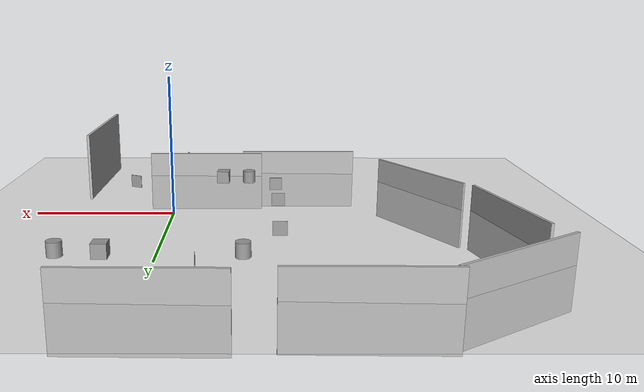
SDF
<sdf version="1.6">
 <world name="default">
  <model name="ground_plane">
   <static>1</static>
   <link name="link">
    <collision name="collision">
     <geometry><plane><normal>0 0 1</normal><size>100 100</size></plane></geometry>
     <surface><friction><ode><mu>100</mu><mu2>50</mu2></ode></friction></surface>
    </collision>
    <visual name="visual">
     <cast_shadows>0</cast_shadows>
     <geometry><plane><normal>0 0 1</normal><size>100 100</size></plane></geometry>
     <material>
      <script><uri>file://media/materials/scripts/gazebo.material</uri><name>Gazebo/Grey</name></script>
     </material>
    </visual>
   </link>
  </model>
  <model name="moon_wall">
   <static>1</static>
   <link name="link">
    <visual name="visual">
     <geometry><mesh><uri>model://moon_wall/meshes/moon_wall.dae</uri></mesh></geometry>
    </visual>
   </link>
   <pose>6.65003 -9.83883 0 0 -0 0</pose>
  </model>
  <model name="unit_cylinder">
   <pose>-5.38795 9.04573 0.499996 3e-06 3e-06 2.7e-05</pose>
   <link name="link">
    <inertial>
     <mass>1</mass>
     <inertia><ixx>0.145833</ixx><ixy>0</ixy><ixz>0</ixz><iyy>0.145833</iyy><iyz>0</iyz><izz>0.125</izz></inertia>
    </inertial>
    <collision name="collision">
     <geometry><cylinder><radius>0.5</radius><length>1</length></cylinder></geometry>
    </collision>
    <visual name="visual">
     <geometry><cylinder><radius>0.5</radius><length>1</length></cylinder></geometry>
     <material>
      <script><name>Gazebo/Grey</name><uri>file://media/materials/scripts/gazebo.material</uri></script>
     </material>
    </visual>
   </link>
  </model>
  <model name="unit_cylinder_0">
   <pose>6.21227 8.90939 0.499994 -3e-06 -2e-06 0</pose>
   <link name="link">
    <inertial>
     <mass>1</mass>
     <inertia><ixx>0.145833</ixx><ixy>0</ixy><ixz>0</ixz><iyy>0.145833</iyy><iyz>0</iyz><izz>0.125</izz></inertia>
    </inertial>
    <collision name="collision">
     <geometry><cylinder><radius>0.5</radius><length>1</length></cylinder></geometry>
    </collision>
    <visual name="visual">
     <geometry><cylinder><radius>0.5</radius><length>1</length></cylinder></geometry>
     <material>
      <script><name>Gazebo/Grey</name><uri>file://media/materials/scripts/gazebo.material</uri></script>
     </material>
    </visual>
   </link>
  </model>
  <model name="unit_box">
   <pose>3.35858 9.04917 0.499995 -1e-05 -0 0</pose>
   <link name="link">
    <inertial>
     <mass>1</mass>
     <inertia>
      <ixx>0.166667</ixx>
      <ixy>0</ixy>
      <ixz>0</ixz>
      <iyy>0.166667</iyy>
      <iyz>0</iyz>
      <izz>0.166667</izz>
     </inertia>
    </inertial>
    <collision name="collision"><geometry><box><size>1 1 1</size></box></geometry></collision>
    <visual name="visual">
     <geometry><box><size>1 1 1</size></box></geometry>
     <material>
      <script><name>Gazebo/Grey</name><uri>file://media/materials/scripts/gazebo.material</uri></script>
     </material>
    </visual>
   </link>
  </model>
  <model name="moon_wall_clone_clone">
   <static>1</static>
   <link name="link">
    <visual name="visual">
     <geometry><mesh><uri>model://moon_wall/meshes/moon_wall.dae</uri></mesh></geometry>
    </visual>
   </link>
   <pose>-1.08824 15.9706 -3.12681 0 0 -1.5736</pose>
  </model>
  <model name="moon_wall_clone_clone_clone">
   <static>1</static>
   <link name="link">
    <visual name="visual">
     <geometry><mesh><uri>model://moon_wall/meshes/moon_wall.dae</uri></mesh></geometry>
    </visual>
   </link>
   <pose>-13.3153 15.7521 -3.12681 0 0 -1.5736</pose>
  </model>
  <model name="moon_wall_clone_clone_clone_0">
   <static>1</static>
   <link name="link">
    <visual name="visual">
     <geometry><mesh><uri>model://moon_wall/meshes/moon_wall.dae</uri></mesh></geometry>
    </visual>
   </link>
   <pose>-2.52792 -11.4579 -3.12681 0 0 -1.5736</pose>
  </model>
  <model name="moon_wall_clone_clone_clone_1">
   <static>1</static>
   <link name="link">
    <visual name="visual">
     <geometry><mesh><uri>model://moon_wall/meshes/moon_wall.dae</uri></mesh></geometry>
    </visual>
   </link>
   <pose>-10.6756 -12.3294 -3.12681 0 0 -1.5736</pose>
  </model>
  <model name="moon_wall_clone_clone_clone_2">
   <static>1</static>
   <link name="link">
    <visual name="visual">
     <geometry><mesh><uri>model://moon_wall/meshes/moon_wall.dae</uri></mesh></geometry>
    </visual>
   </link>
   <pose>-19.4253 -4.36388 -3.12681 0 0 -2.58568</pose>
  </model>
  <model name="moon_wall_clone_clone_clone_4">
   <static>1</static>
   <link name="link">
    <visual name="visual">
     <geometry><mesh><uri>model://moon_wall/meshes/moon_wall.dae</uri></mesh></geometry>
    </visual>
   </link>
   <pose>-21.97 12.3362 -3.12681 0 0 -0.984752</pose>
  </model>
  <model name="moon_wall_clone_clone_clone_3">
   <static>1</static>
   <link name="link">
    <visual name="visual">
     <geometry><mesh><uri>model://moon_wall/meshes/moon_wall.dae</uri></mesh></geometry>
    </visual>
   </link>
   <pose>-23.3459 4.85297 -3.12681 0 0 -2.89263</pose>
  </model>
  <model name="unit_cylinder_1">
   <pose>-2.59361 10.8256 0.497744 0.000927 0.000186 -1.7686</pose>
   <link name="link">
    <inertial>
     <mass>1</mass>
     <inertia><ixx>0.145833</ixx><ixy>0</ixy><ixz>0</ixz><iyy>0.145833</iyy><iyz>0</iyz><izz>0.125</izz></inertia>
    </inertial>
    <collision name="collision">
     <geometry><cylinder><radius>0.0219159</radius><length>1</length></cylinder></geometry>
    </collision>
    <visual name="visual">
     <geometry><cylinder><radius>0.0219159</radius><length>1</length></cylinder></geometry>
     <material>
      <script><name>Gazebo/Grey</name><uri>file://media/materials/scripts/gazebo.material</uri></script>
     </material>
    </visual>
   </link>
  </model>
  <model name="unit_box_clone">
   <pose>-7.72088 4.99038 0.489053 -0.003028 -2e-06 -0.00075</pose>
   <link name="link">
    <inertial>
     <mass>1</mass>
     <inertia>
      <ixx>0.166667</ixx>
      <ixy>0</ixy>
      <ixz>0</ixz>
      <iyy>0.166667</iyy>
      <iyz>0</iyz>
      <izz>0.166667</izz>
     </inertia>
    </inertial>
    <collision name="collision"><geometry><box><size>1 0.019096 1</size></box></geometry></collision>
    <visual name="visual">
     <geometry><box><size>1 0.019096 1</size></box></geometry>
     <material>
      <script><name>Gazebo/Grey</name><uri>file://media/materials/scripts/gazebo.material</uri></script>
     </material>
    </visual>
   </link>
  </model>
  <model name="unit_box_clone_0">
   <pose>-7.70883 -1.97106 0.499997 -0 -5e-06 -9.4e-05</pose>
   <link name="link">
    <inertial>
     <mass>1</mass>
     <inertia>
      <ixx>0.166667</ixx>
      <ixy>0</ixy>
      <ixz>0</ixz>
      <iyy>0.166667</iyy>
      <iyz>0</iyz>
      <izz>0.166667</izz>
     </inertia>
    </inertial>
    <collision name="collision"><geometry><box><size>1 0.0305848 1</size></box></geometry></collision>
    <visual name="visual">
     <geometry><box><size>1 0.0305848 1</size></box></geometry>
     <material>
      <script><name>Gazebo/Grey</name><uri>file://media/materials/scripts/gazebo.material</uri></script>
     </material>
    </visual>
   </link>
  </model>
  <model name="unit_box_clone_1">
   <pose>-7.59077 -6.64325 0.499996 0 -5e-06 1.1e-05</pose>
   <link name="link">
    <inertial>
     <mass>1</mass>
     <inertia>
      <ixx>0.166667</ixx>
      <ixy>0</ixy>
      <ixz>0</ixz>
      <iyy>0.166667</iyy>
      <iyz>0</iyz>
      <izz>0.166667</izz>
     </inertia>
    </inertial>
    <collision name="collision"><geometry><box><size>1 0.0760437 1</size></box></geometry></collision>
    <visual name="visual">
     <geometry><box><size>1 0.0760437 1</size></box></geometry>
     <material>
      <script><name>Gazebo/Grey</name><uri>file://media/materials/scripts/gazebo.material</uri></script>
     </material>
    </visual>
   </link>
  </model>
  <model name="unit_box_0">
   <pose>-3.16853 -9.22673 0.5 0 0 -0.068173</pose>
   <link name="link">
    <inertial>
     <mass>1</mass>
     <inertia>
      <ixx>0.166667</ixx>
      <ixy>0</ixy>
      <ixz>0</ixz>
      <iyy>0.166667</iyy>
      <iyz>0</iyz>
      <izz>0.166667</izz>
     </inertia>
    </inertial>
    <collision name="collision"><geometry><box><size>1 1 1</size></box></geometry></collision>
    <visual name="visual">
     <geometry><box><size>1 1 1</size></box></geometry>
     <material>
      <script><name>Gazebo/Grey</name><uri>file://media/materials/scripts/gazebo.material</uri></script>
     </material>
    </visual>
   </link>
  </model>
  <model name="unit_cylinder_2">
   <pose>-5.34609 -9.19965 0.499998 3e-06 4e-06 -0</pose>
   <link name="link">
    <inertial>
     <mass>1</mass>
     <inertia><ixx>0.145833</ixx><ixy>0</ixy><ixz>0</ixz><iyy>0.145833</iyy><iyz>0</iyz><izz>0.125</izz></inertia>
    </inertial>
    <collision name="collision">
     <geometry><cylinder><radius>0.5</radius><length>1</length></cylinder></geometry>
    </collision>
    <visual name="visual">
     <geometry><cylinder><radius>0.5</radius><length>1</length></cylinder></geometry>
     <material>
      <script><name>Gazebo/Grey</name><uri>file://media/materials/scripts/gazebo.material</uri></script>
     </material>
    </visual>
   </link>
  </model>
  <model name="unit_box_1">
   <pose>3.99959 -7.48803 0.499997 0 6e-06 2.66135</pose>
   <link name="link">
    <inertial>
     <mass>1</mass>
     <inertia>
      <ixx>0.166667</ixx>
      <ixy>0</ixy>
      <ixz>0</ixz>
      <iyy>0.166667</iyy>
      <iyz>0</iyz>
      <izz>0.166667</izz>
     </inertia>
    </inertial>
    <collision name="collision"><geometry><box><size>1 0.0396524 1</size></box></geometry></collision>
    <visual name="visual">
     <geometry><box><size>1 0.0396524 1</size></box></geometry>
     <material>
      <script><name>Gazebo/Grey</name><uri>file://media/materials/scripts/gazebo.material</uri></script>
     </material>
    </visual>
   </link>
  </model>
  <model name="unit_box_2">
   <pose>-0.070166 -10.6777 2.25555 0 -0 0.918658</pose>
   <link name="link">
    <inertial>
     <mass>1</mass>
     <inertia>
      <ixx>0.166667</ixx>
      <ixy>0</ixy>
      <ixz>0</ixz>
      <iyy>0.166667</iyy>
      <iyz>0</iyz>
      <izz>0.166667</izz>
     </inertia>
    </inertial>
    <collision name="collision">
     <geometry><box><size>0.0541082 0.0907983 0.0491394</size></box></geometry>
    </collision>
    <visual name="visual">
     <geometry><box><size>0.0541082 0.0907983 0.0491394</size></box></geometry>
     <material>
      <script><name>Gazebo/Grey</name><uri>file://media/materials/scripts/gazebo.material</uri></script>
     </material>
    </visual>
   </link>
  </model>
 </world>
</sdf>
